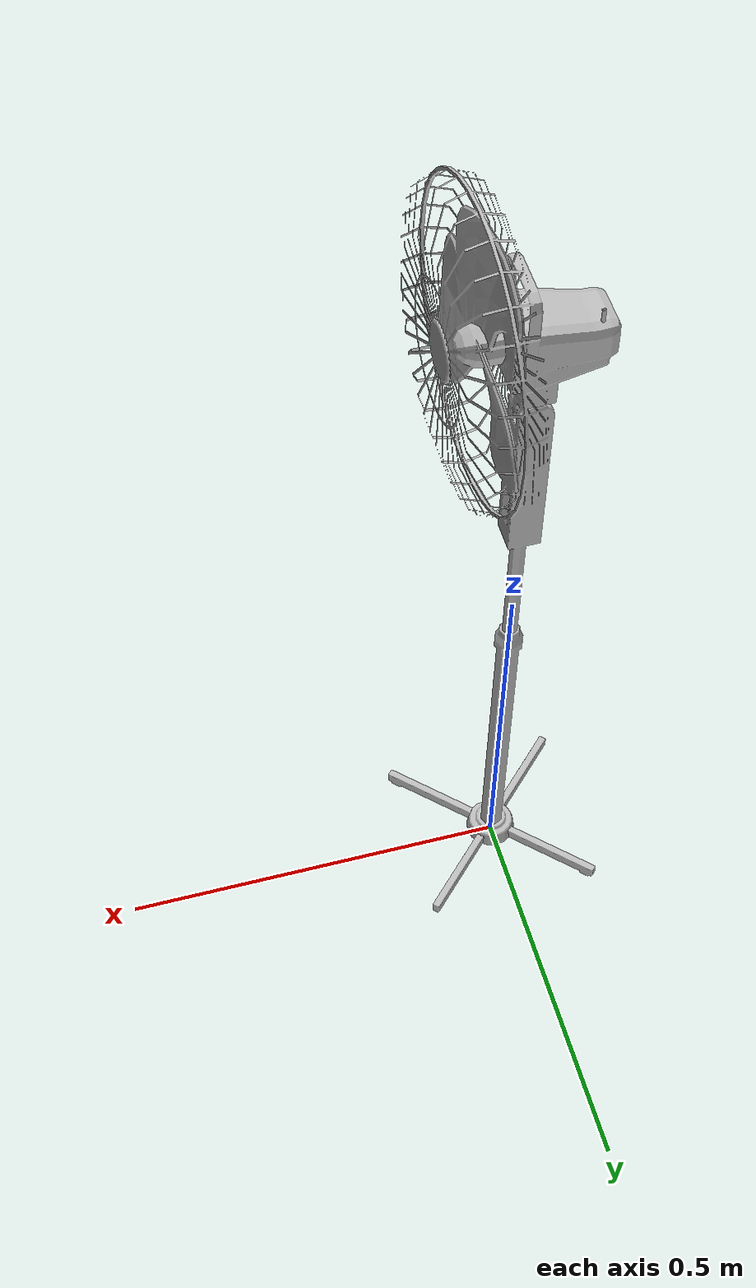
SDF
<?xml version='1.0'?>
<sdf version='1.4'>
  <model name='226'>
    <pose>0 0 0 0 0 0</pose>
    <static>true</static>
    <link name='link'>
      <collision name='collision'>
        <pose>0 0 0 0 0 0</pose>
        <geometry>
          <box>
            <size>0.229955 0.369998 2</size>
          </box>
        </geometry>
      </collision>
      <visual name='visual'>
        <pose>0 0 0 0 0 0</pose>
        <geometry>
          <mesh><uri>model://226/226.dae</uri></mesh>
        </geometry>
      </visual>
    </link>
  </model>
</sdf>
